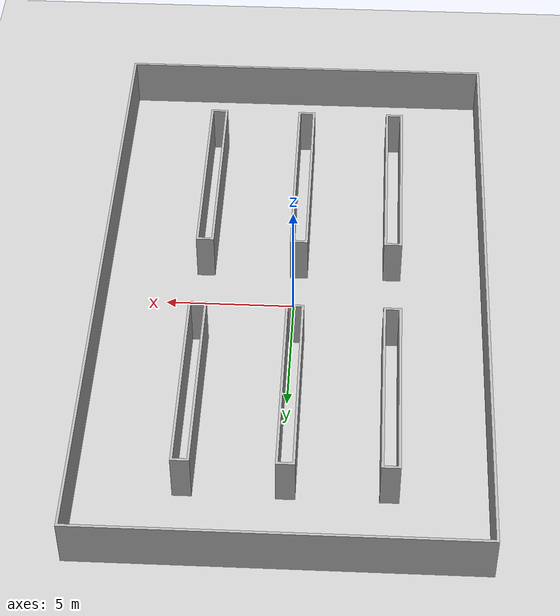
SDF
<?xml version="1.0" ?>
<sdf version="1.4">
  <world name="default">
    <include>
      <uri>model://ground_plane</uri>
    </include>
    <include>
      <uri>model://sun</uri>
    </include>
    <include>
      <uri>model://warehouse</uri>
    </include>
  </world>
</sdf>

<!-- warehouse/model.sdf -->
<sdf version="1.4">
  <model name="warehouse">
    <link name="link">
      <inertial>
        <mass>15</mass>
        <inertia>
          <ixx>0.0</ixx>
          <ixy>0.0</ixy>
          <ixz>0.0</ixz>
          <iyy>0.0</iyy>
          <iyz>0.0</iyz>
          <izz>0.0</izz>
        </inertia>
      </inertial>
      <collision name="collision">
        <pose>0 0 0 0 0 0</pose>
        <geometry>
          <mesh>
            <uri>model://warehouse/meshes/warehouse.stl</uri>
          </mesh>
        </geometry>
      </collision>
      <visual name="visual">
        <pose>0 0 0 0 0 0</pose>
        <geometry>
          <mesh>
            <uri>model://warehouse/meshes/warehouse.stl</uri>
          </mesh>
        </geometry>
      </visual>
    </link>
    <static>1</static>
  </model>
</sdf>
